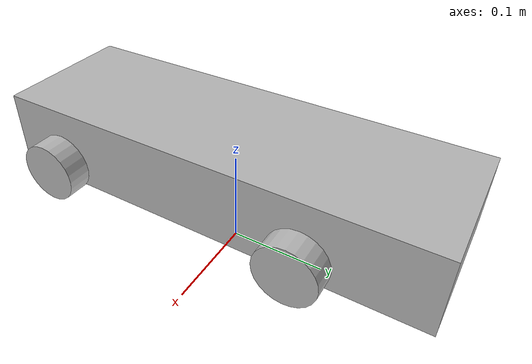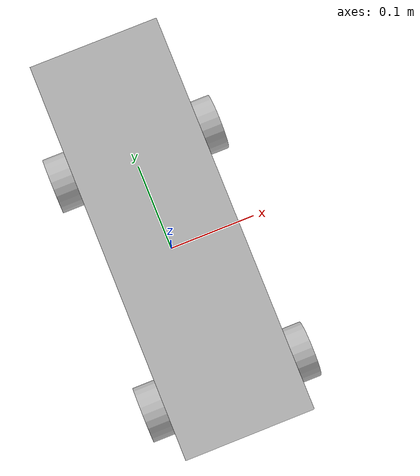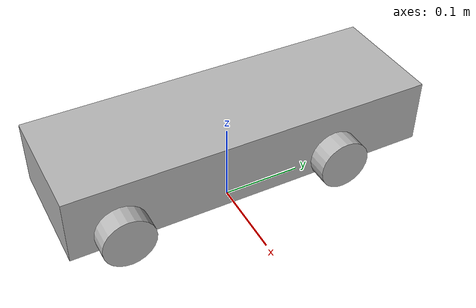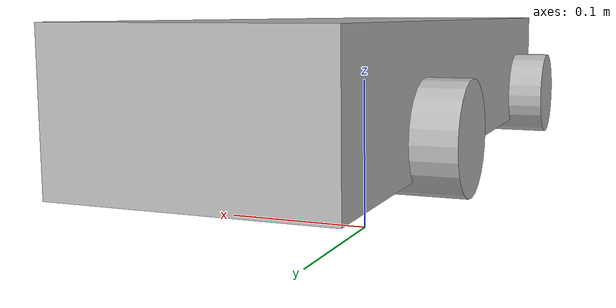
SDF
<?xml version='1.0'?>
<sdf version='1.5'>
  <model name='AutoNOMOS_mini'>
    <link name="chassis">
      <pose>0 0 0.1 0 0 0</pose>
      <inertial>
        <mass>2</mass>
        <inertia>
          <ixx>0.13628333</ixx>
          <iyy>0.02683733</iyy>
          <izz>0.15458733</izz>
          <ixy>0.04094</ixy>
          <ixz>0.00736</ixz>
          <iyz>0.0178</iyz>
        </inertia>
      </inertial>
      <collision name="collision">
        <geometry>
          <box>
            <size>.130 .445 .080</size>
          </box>
        </geometry>
        <surface>
          <friction>
            <ode>
              <mu>100</mu>
              <mu2>50</mu2>
            </ode>
          </friction>
        </surface>
      </collision>
      <visual name="chassis_visual">
        <cast_shadows>false</cast_shadows>
        <geometry>
          <box>
            <size>.144 .445 .08</size>
          </box>
        </geometry>
        </visual>
    </link>

    <link name="wheel1">
      <pose>0.07425 .1035 0.08 0 1.57075 0</pose>
      <inertial>
        <mass>0.05</mass>
        <inertia>
          <ixx>0.00002045</ixx>
          <iyy>0.00002045</iyy>
          <izz>0.000024025</izz>
          <ixy>0</ixy>
          <ixz>0</ixz>
          <iyz>0</iyz>
        </inertia>
      </inertial>
      <collision name="collision">
        <geometry>
          <cylinder>
          	<radius> .031 </radius>
            <length> .045 </length>
          </cylinder>
        </geometry>
        <surface>
          <friction>
            <ode>
              <mu>100</mu>
              <mu2>50</mu2>
            </ode>
          </friction>
        </surface>
      </collision>
      <visual name="wheel1_visual">
        <cast_shadows>false</cast_shadows>
        <geometry>
          <cylinder>
          	<radius> .031 </radius>
            <length> .045 </length>
          </cylinder>
        </geometry>
        </visual>
    </link>

    <link name="wheel2">
      <pose>-0.07425 .1035 0.08 0 1.57075 0</pose>
      <inertial>
        <mass>0.05</mass>
        <inertia>
          <ixx>0.00002045</ixx>
          <iyy>0.00002045</iyy>
          <izz>0.000024025</izz>
          <ixy>0</ixy>
          <ixz>0</ixz>
          <iyz>0</iyz>
        </inertia>
      </inertial>
      <collision name="collision">
        <geometry>
          <cylinder>
          	<radius> .031 </radius>
            <length> .045 </length>
          </cylinder>
        </geometry>
        <surface>
          <friction>
            <ode>
              <mu>100</mu>
              <mu2>50</mu2>
            </ode>
          </friction>
        </surface>
      </collision>
      <visual name="wheel2_visual">
        <cast_shadows>false</cast_shadows>
        <geometry>
          <cylinder>
          	<radius> .031 </radius>
            <length> .045 </length>
          </cylinder>
        </geometry>
        </visual>
    </link>

    <link name="wheel3">
      <pose>0.07425 -.1625 0.08 0 1.57075 0</pose>
      <inertial>
        <mass>0.05</mass>
        <inertia>
          <ixx>0.00002045</ixx>
          <iyy>0.00002045</iyy>
          <izz>0.000024025</izz>
          <ixy>0</ixy>
          <ixz>0</ixz>
          <iyz>0</iyz>
        </inertia>
      </inertial>
      <collision name="collision">
        <geometry>
          <cylinder>
          	<radius> .031 </radius>
            <length> .045 </length>
          </cylinder>
        </geometry>
        <surface>
          <friction>
            <ode>
              <mu>100</mu>
              <mu2>50</mu2>
            </ode>
          </friction>
        </surface>
      </collision>
      <visual name="wheel3_visual">
        <cast_shadows>false</cast_shadows>
        <geometry>
          <cylinder>
          	<radius> .031 </radius>
            <length> .045 </length>
          </cylinder>
        </geometry>
        </visual>
    </link>

    <link name="wheel4">
      <pose>-0.07425 -.1625 0.08 0 1.57075 0</pose>
      <inertial>
        <mass>0.05</mass>
        <inertia>
          <ixx>0.00002045</ixx>
          <iyy>0.00002045</iyy>
          <izz>0.000024025</izz>
          <ixy>0</ixy>
          <ixz>0</ixz>
          <iyz>0</iyz>
        </inertia>
      </inertial>
      <collision name="collision">
        <geometry>
          <cylinder>
          	<radius> .031 </radius>
            <length> .045 </length>
          </cylinder>
        </geometry>
        <surface>
          <friction>
            <ode>
              <mu>100</mu>
              <mu2>50</mu2>
            </ode>
          </friction>
        </surface>
      </collision>
      <visual name="wheel4_visual">
        <cast_shadows>false</cast_shadows>
        <geometry>
          <cylinder>
          	<radius> .031 </radius>
            <length> .045 </length>
          </cylinder>
        </geometry>
        </visual>
    </link>

    <joint name='chassis-wheel_JOINT3' type='revolute'>
      <parent>chassis</parent>
      <child>wheel3</child>
      <pose frame=''>0 0 0 0 0 0</pose>
      <axis>
        <xyz>0 0 1</xyz>
        <use_parent_model_frame>0</use_parent_model_frame>
        <limit>
          <lower>-1.79769e+308</lower>
          <upper>1.79769e+308</upper>
          <effort>-1</effort>
          <velocity>-1</velocity>
        </limit>
        <dynamics>
          <spring_reference>0</spring_reference>
          <spring_stiffness>0</spring_stiffness>
          <damping>0</damping>
          <friction>0</friction>
        </dynamics>
      </axis>
      <physics>
        <ode>
          <limit>
            <cfm>0</cfm>
            <erp>0.2</erp>
          </limit>
          <suspension>
            <cfm>0</cfm>
            <erp>0.2</erp>
          </suspension>
        </ode>
      </physics>
    </joint>

    <joint name='chassis-wheel_JOINT4' type='revolute'>
      <parent>chassis</parent>
      <child>wheel4</child>
      <pose frame=''>0 0 0 0 0 0</pose>
      <axis>
        <xyz>0 0 1</xyz>
        <use_parent_model_frame>0</use_parent_model_frame>
        <limit>
          <lower>-1.79769e+308</lower>
          <upper>1.79769e+308</upper>
          <effort>-1</effort>
          <velocity>-1</velocity>
        </limit>
        <dynamics>
          <spring_reference>0</spring_reference>
          <spring_stiffness>0</spring_stiffness>
          <damping>0</damping>
          <friction>0</friction>
        </dynamics>
      </axis>
      <physics>
        <ode>
          <limit>
            <cfm>0</cfm>
            <erp>0.2</erp>
          </limit>
          <suspension>
            <cfm>0</cfm>
            <erp>0.2</erp>
          </suspension>
        </ode>
      </physics>
    </joint>

    <joint name="wheel_right_steer_spin" type="universal">
      <parent>chassis</parent>
      <child>wheel1</child>
      <axis>
        <xyz>-1 0 0</xyz>
        <limit>
          <lower>-0.6108652381980153</lower>
          <upper>0.6108652381980153</upper>
        </limit>
      </axis>
      <axis2>
        <xyz>0 0 1</xyz>
      </axis2>
    </joint>

    <joint name="wheel_left_steer_spin" type="universal">
      <parent>chassis</parent>
      <child>wheel2</child>
      <axis>
        <xyz>-1 0 0</xyz>
        <limit>
          <lower>-0.6108652381980153</lower>
          <upper>0.6108652381980153</upper>
        </limit>
      </axis>
      <axis2>
        <xyz>0 0 1</xyz>
      </axis2>
    </joint>
  </model>
</sdf>
